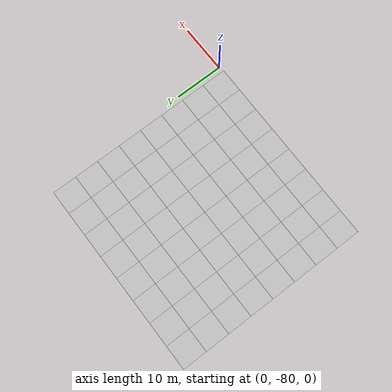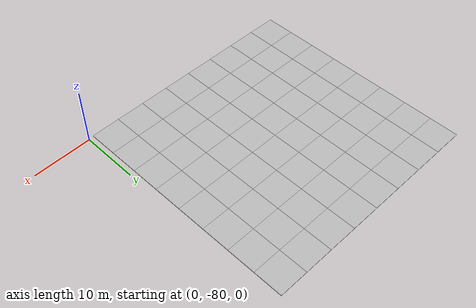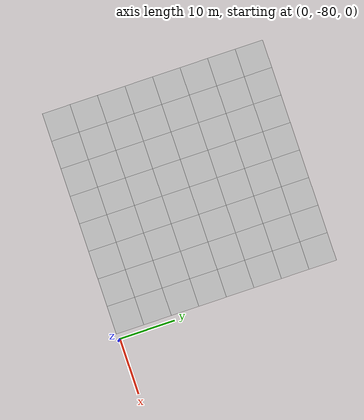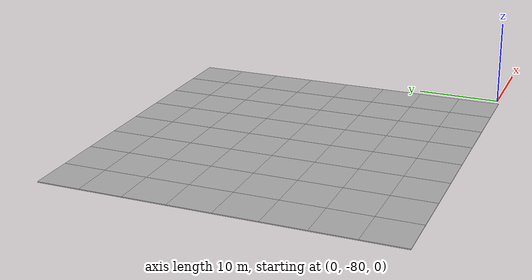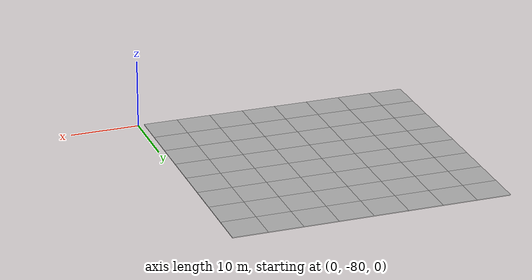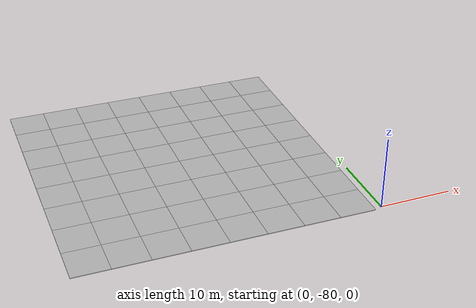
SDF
<sdf version="1.7">
 <world name="default">
  <model name="mud_plane_80x80_2">
   <model name="mud_plane_40x40_0">
    <model name="mud_plane_20x20">
     <model name="mud_plane">
      <static>1</static>
      <link name="link">
       <collision name="collision"><geometry><box><size>10 10 0.1</size></box></geometry></collision>
       <visual name="visual_1">
        <pose>-2.5 2.5 -0.05 0 -0 0</pose>
        <cast_shadows>0</cast_shadows>
        <geometry><box><size>5 5 0.1</size></box></geometry>
        <material>
         <script>
          <uri>model://mud_plane/materials/scripts</uri>
          <uri>model://mud_plane/materials/textures</uri>
          <name>vrc/mud</name>
         </script>
        </material>
       </visual>
       <visual name="visual_2">
        <pose>2.5 2.5 -0.05 0 -0 0</pose>
        <cast_shadows>0</cast_shadows>
        <geometry><box><size>5 5 0.1</size></box></geometry>
        <material>
         <script>
          <uri>model://mud_plane/materials/scripts</uri>
          <uri>model://mud_plane/materials/textures</uri>
          <name>vrc/mud</name>
         </script>
        </material>
       </visual>
       <visual name="visual_3">
        <pose>2.5 -2.5 -0.05 0 -0 0</pose>
        <cast_shadows>0</cast_shadows>
        <geometry><box><size>5 5 0.1</size></box></geometry>
        <material>
         <script>
          <uri>model://mud_plane/materials/scripts</uri>
          <uri>model://mud_plane/materials/textures</uri>
          <name>vrc/mud</name>
         </script>
        </material>
       </visual>
       <visual name="visual_4">
        <pose>-2.5 -2.5 -0.05 0 -0 0</pose>
        <cast_shadows>0</cast_shadows>
        <geometry><box><size>5 5 0.1</size></box></geometry>
        <material>
         <script>
          <uri>model://mud_plane/materials/scripts</uri>
          <uri>model://mud_plane/materials/textures</uri>
          <name>vrc/mud</name>
         </script>
        </material>
       </visual>
      </link>
      <pose>-4.99986 -4.99991 0 0 -0 0</pose>
     </model>
     <model name="mud_plane_0">
      <static>1</static>
      <link name="link">
       <collision name="collision"><geometry><box><size>10 10 0.1</size></box></geometry></collision>
       <visual name="visual_1">
        <pose>-2.5 2.5 -0.05 0 -0 0</pose>
        <cast_shadows>0</cast_shadows>
        <geometry><box><size>5 5 0.1</size></box></geometry>
        <material>
         <script>
          <uri>model://mud_plane/materials/scripts</uri>
          <uri>model://mud_plane/materials/textures</uri>
          <name>vrc/mud</name>
         </script>
        </material>
       </visual>
       <visual name="visual_2">
        <pose>2.5 2.5 -0.05 0 -0 0</pose>
        <cast_shadows>0</cast_shadows>
        <geometry><box><size>5 5 0.1</size></box></geometry>
        <material>
         <script>
          <uri>model://mud_plane/materials/scripts</uri>
          <uri>model://mud_plane/materials/textures</uri>
          <name>vrc/mud</name>
         </script>
        </material>
       </visual>
       <visual name="visual_3">
        <pose>2.5 -2.5 -0.05 0 -0 0</pose>
        <cast_shadows>0</cast_shadows>
        <geometry><box><size>5 5 0.1</size></box></geometry>
        <material>
         <script>
          <uri>model://mud_plane/materials/scripts</uri>
          <uri>model://mud_plane/materials/textures</uri>
          <name>vrc/mud</name>
         </script>
        </material>
       </visual>
       <visual name="visual_4">
        <pose>-2.5 -2.5 -0.05 0 -0 0</pose>
        <cast_shadows>0</cast_shadows>
        <geometry><box><size>5 5 0.1</size></box></geometry>
        <material>
         <script>
          <uri>model://mud_plane/materials/scripts</uri>
          <uri>model://mud_plane/materials/textures</uri>
          <name>vrc/mud</name>
         </script>
        </material>
       </visual>
      </link>
      <pose>-4.99946 4.99954 0 0 -0 0</pose>
     </model>
     <model name="mud_plane_1">
      <static>1</static>
      <link name="link">
       <collision name="collision"><geometry><box><size>10 10 0.1</size></box></geometry></collision>
       <visual name="visual_1">
        <pose>-2.5 2.5 -0.05 0 -0 0</pose>
        <cast_shadows>0</cast_shadows>
        <geometry><box><size>5 5 0.1</size></box></geometry>
        <material>
         <script>
          <uri>model://mud_plane/materials/scripts</uri>
          <uri>model://mud_plane/materials/textures</uri>
          <name>vrc/mud</name>
         </script>
        </material>
       </visual>
       <visual name="visual_2">
        <pose>2.5 2.5 -0.05 0 -0 0</pose>
        <cast_shadows>0</cast_shadows>
        <geometry><box><size>5 5 0.1</size></box></geometry>
        <material>
         <script>
          <uri>model://mud_plane/materials/scripts</uri>
          <uri>model://mud_plane/materials/textures</uri>
          <name>vrc/mud</name>
         </script>
        </material>
       </visual>
       <visual name="visual_3">
        <pose>2.5 -2.5 -0.05 0 -0 0</pose>
        <cast_shadows>0</cast_shadows>
        <geometry><box><size>5 5 0.1</size></box></geometry>
        <material>
         <script>
          <uri>model://mud_plane/materials/scripts</uri>
          <uri>model://mud_plane/materials/textures</uri>
          <name>vrc/mud</name>
         </script>
        </material>
       </visual>
       <visual name="visual_4">
        <pose>-2.5 -2.5 -0.05 0 -0 0</pose>
        <cast_shadows>0</cast_shadows>
        <geometry><box><size>5 5 0.1</size></box></geometry>
        <material>
         <script>
          <uri>model://mud_plane/materials/scripts</uri>
          <uri>model://mud_plane/materials/textures</uri>
          <name>vrc/mud</name>
         </script>
        </material>
       </visual>
      </link>
      <pose>4.99964 -4.99949 0 0 -0 0</pose>
     </model>
     <model name="mud_plane_2">
      <static>1</static>
      <link name="link">
       <collision name="collision"><geometry><box><size>10 10 0.1</size></box></geometry></collision>
       <visual name="visual_1">
        <pose>-2.5 2.5 -0.05 0 -0 0</pose>
        <cast_shadows>0</cast_shadows>
        <geometry><box><size>5 5 0.1</size></box></geometry>
        <material>
         <script>
          <uri>model://mud_plane/materials/scripts</uri>
          <uri>model://mud_plane/materials/textures</uri>
          <name>vrc/mud</name>
         </script>
        </material>
       </visual>
       <visual name="visual_2">
        <pose>2.5 2.5 -0.05 0 -0 0</pose>
        <cast_shadows>0</cast_shadows>
        <geometry><box><size>5 5 0.1</size></box></geometry>
        <material>
         <script>
          <uri>model://mud_plane/materials/scripts</uri>
          <uri>model://mud_plane/materials/textures</uri>
          <name>vrc/mud</name>
         </script>
        </material>
       </visual>
       <visual name="visual_3">
        <pose>2.5 -2.5 -0.05 0 -0 0</pose>
        <cast_shadows>0</cast_shadows>
        <geometry><box><size>5 5 0.1</size></box></geometry>
        <material>
         <script>
          <uri>model://mud_plane/materials/scripts</uri>
          <uri>model://mud_plane/materials/textures</uri>
          <name>vrc/mud</name>
         </script>
        </material>
       </visual>
       <visual name="visual_4">
        <pose>-2.5 -2.5 -0.05 0 -0 0</pose>
        <cast_shadows>0</cast_shadows>
        <geometry><box><size>5 5 0.1</size></box></geometry>
        <material>
         <script>
          <uri>model://mud_plane/materials/scripts</uri>
          <uri>model://mud_plane/materials/textures</uri>
          <name>vrc/mud</name>
         </script>
        </material>
       </visual>
      </link>
      <pose>4.99967 4.99986 0 0 -0 0</pose>
     </model>
     <static>0</static>
     <pose>-9.99895 9.99843 0 0 -0 0</pose>
    </model>
    <model name="mud_plane_20x20_0">
     <model name="mud_plane">
      <static>1</static>
      <link name="link">
       <collision name="collision"><geometry><box><size>10 10 0.1</size></box></geometry></collision>
       <visual name="visual_1">
        <pose>-2.5 2.5 -0.05 0 -0 0</pose>
        <cast_shadows>0</cast_shadows>
        <geometry><box><size>5 5 0.1</size></box></geometry>
        <material>
         <script>
          <uri>model://mud_plane/materials/scripts</uri>
          <uri>model://mud_plane/materials/textures</uri>
          <name>vrc/mud</name>
         </script>
        </material>
       </visual>
       <visual name="visual_2">
        <pose>2.5 2.5 -0.05 0 -0 0</pose>
        <cast_shadows>0</cast_shadows>
        <geometry><box><size>5 5 0.1</size></box></geometry>
        <material>
         <script>
          <uri>model://mud_plane/materials/scripts</uri>
          <uri>model://mud_plane/materials/textures</uri>
          <name>vrc/mud</name>
         </script>
        </material>
       </visual>
       <visual name="visual_3">
        <pose>2.5 -2.5 -0.05 0 -0 0</pose>
        <cast_shadows>0</cast_shadows>
        <geometry><box><size>5 5 0.1</size></box></geometry>
        <material>
         <script>
          <uri>model://mud_plane/materials/scripts</uri>
          <uri>model://mud_plane/materials/textures</uri>
          <name>vrc/mud</name>
         </script>
        </material>
       </visual>
       <visual name="visual_4">
        <pose>-2.5 -2.5 -0.05 0 -0 0</pose>
        <cast_shadows>0</cast_shadows>
        <geometry><box><size>5 5 0.1</size></box></geometry>
        <material>
         <script>
          <uri>model://mud_plane/materials/scripts</uri>
          <uri>model://mud_plane/materials/textures</uri>
          <name>vrc/mud</name>
         </script>
        </material>
       </visual>
      </link>
      <pose>-4.99986 -4.99991 0 0 -0 0</pose>
     </model>
     <model name="mud_plane_0">
      <static>1</static>
      <link name="link">
       <collision name="collision"><geometry><box><size>10 10 0.1</size></box></geometry></collision>
       <visual name="visual_1">
        <pose>-2.5 2.5 -0.05 0 -0 0</pose>
        <cast_shadows>0</cast_shadows>
        <geometry><box><size>5 5 0.1</size></box></geometry>
        <material>
         <script>
          <uri>model://mud_plane/materials/scripts</uri>
          <uri>model://mud_plane/materials/textures</uri>
          <name>vrc/mud</name>
         </script>
        </material>
       </visual>
       <visual name="visual_2">
        <pose>2.5 2.5 -0.05 0 -0 0</pose>
        <cast_shadows>0</cast_shadows>
        <geometry><box><size>5 5 0.1</size></box></geometry>
        <material>
         <script>
          <uri>model://mud_plane/materials/scripts</uri>
          <uri>model://mud_plane/materials/textures</uri>
          <name>vrc/mud</name>
         </script>
        </material>
       </visual>
       <visual name="visual_3">
        <pose>2.5 -2.5 -0.05 0 -0 0</pose>
        <cast_shadows>0</cast_shadows>
        <geometry><box><size>5 5 0.1</size></box></geometry>
        <material>
         <script>
          <uri>model://mud_plane/materials/scripts</uri>
          <uri>model://mud_plane/materials/textures</uri>
          <name>vrc/mud</name>
         </script>
        </material>
       </visual>
       <visual name="visual_4">
        <pose>-2.5 -2.5 -0.05 0 -0 0</pose>
        <cast_shadows>0</cast_shadows>
        <geometry><box><size>5 5 0.1</size></box></geometry>
        <material>
         <script>
          <uri>model://mud_plane/materials/scripts</uri>
          <uri>model://mud_plane/materials/textures</uri>
          <name>vrc/mud</name>
         </script>
        </material>
       </visual>
      </link>
      <pose>-4.99946 4.99954 0 0 -0 0</pose>
     </model>
     <model name="mud_plane_1">
      <static>1</static>
      <link name="link">
       <collision name="collision"><geometry><box><size>10 10 0.1</size></box></geometry></collision>
       <visual name="visual_1">
        <pose>-2.5 2.5 -0.05 0 -0 0</pose>
        <cast_shadows>0</cast_shadows>
        <geometry><box><size>5 5 0.1</size></box></geometry>
        <material>
         <script>
          <uri>model://mud_plane/materials/scripts</uri>
          <uri>model://mud_plane/materials/textures</uri>
          <name>vrc/mud</name>
         </script>
        </material>
       </visual>
       <visual name="visual_2">
        <pose>2.5 2.5 -0.05 0 -0 0</pose>
        <cast_shadows>0</cast_shadows>
        <geometry><box><size>5 5 0.1</size></box></geometry>
        <material>
         <script>
          <uri>model://mud_plane/materials/scripts</uri>
          <uri>model://mud_plane/materials/textures</uri>
          <name>vrc/mud</name>
         </script>
        </material>
       </visual>
       <visual name="visual_3">
        <pose>2.5 -2.5 -0.05 0 -0 0</pose>
        <cast_shadows>0</cast_shadows>
        <geometry><box><size>5 5 0.1</size></box></geometry>
        <material>
         <script>
          <uri>model://mud_plane/materials/scripts</uri>
          <uri>model://mud_plane/materials/textures</uri>
          <name>vrc/mud</name>
         </script>
        </material>
       </visual>
       <visual name="visual_4">
        <pose>-2.5 -2.5 -0.05 0 -0 0</pose>
        <cast_shadows>0</cast_shadows>
        <geometry><box><size>5 5 0.1</size></box></geometry>
        <material>
         <script>
          <uri>model://mud_plane/materials/scripts</uri>
          <uri>model://mud_plane/materials/textures</uri>
          <name>vrc/mud</name>
         </script>
        </material>
       </visual>
      </link>
      <pose>4.99964 -4.99949 0 0 -0 0</pose>
     </model>
     <model name="mud_plane_2">
      <static>1</static>
      <link name="link">
       <collision name="collision"><geometry><box><size>10 10 0.1</size></box></geometry></collision>
       <visual name="visual_1">
        <pose>-2.5 2.5 -0.05 0 -0 0</pose>
        <cast_shadows>0</cast_shadows>
        <geometry><box><size>5 5 0.1</size></box></geometry>
        <material>
         <script>
          <uri>model://mud_plane/materials/scripts</uri>
          <uri>model://mud_plane/materials/textures</uri>
          <name>vrc/mud</name>
         </script>
        </material>
       </visual>
       <visual name="visual_2">
        <pose>2.5 2.5 -0.05 0 -0 0</pose>
        <cast_shadows>0</cast_shadows>
        <geometry><box><size>5 5 0.1</size></box></geometry>
        <material>
         <script>
          <uri>model://mud_plane/materials/scripts</uri>
          <uri>model://mud_plane/materials/textures</uri>
          <name>vrc/mud</name>
         </script>
        </material>
       </visual>
       <visual name="visual_3">
        <pose>2.5 -2.5 -0.05 0 -0 0</pose>
        <cast_shadows>0</cast_shadows>
        <geometry><box><size>5 5 0.1</size></box></geometry>
        <material>
         <script>
          <uri>model://mud_plane/materials/scripts</uri>
          <uri>model://mud_plane/materials/textures</uri>
          <name>vrc/mud</name>
         </script>
        </material>
       </visual>
       <visual name="visual_4">
        <pose>-2.5 -2.5 -0.05 0 -0 0</pose>
        <cast_shadows>0</cast_shadows>
        <geometry><box><size>5 5 0.1</size></box></geometry>
        <material>
         <script>
          <uri>model://mud_plane/materials/scripts</uri>
          <uri>model://mud_plane/materials/textures</uri>
          <name>vrc/mud</name>
         </script>
        </material>
       </visual>
      </link>
      <pose>4.99967 4.99986 0 0 -0 0</pose>
     </model>
     <static>0</static>
     <pose>9.99933 9.9997 0 0 -0 0</pose>
    </model>
    <model name="mud_plane_20x20_1">
     <model name="mud_plane">
      <static>1</static>
      <link name="link">
       <collision name="collision"><geometry><box><size>10 10 0.1</size></box></geometry></collision>
       <visual name="visual_1">
        <pose>-2.5 2.5 -0.05 0 -0 0</pose>
        <cast_shadows>0</cast_shadows>
        <geometry><box><size>5 5 0.1</size></box></geometry>
        <material>
         <script>
          <uri>model://mud_plane/materials/scripts</uri>
          <uri>model://mud_plane/materials/textures</uri>
          <name>vrc/mud</name>
         </script>
        </material>
       </visual>
       <visual name="visual_2">
        <pose>2.5 2.5 -0.05 0 -0 0</pose>
        <cast_shadows>0</cast_shadows>
        <geometry><box><size>5 5 0.1</size></box></geometry>
        <material>
         <script>
          <uri>model://mud_plane/materials/scripts</uri>
          <uri>model://mud_plane/materials/textures</uri>
          <name>vrc/mud</name>
         </script>
        </material>
       </visual>
       <visual name="visual_3">
        <pose>2.5 -2.5 -0.05 0 -0 0</pose>
        <cast_shadows>0</cast_shadows>
        <geometry><box><size>5 5 0.1</size></box></geometry>
        <material>
         <script>
          <uri>model://mud_plane/materials/scripts</uri>
          <uri>model://mud_plane/materials/textures</uri>
          <name>vrc/mud</name>
         </script>
        </material>
       </visual>
       <visual name="visual_4">
        <pose>-2.5 -2.5 -0.05 0 -0 0</pose>
        <cast_shadows>0</cast_shadows>
        <geometry><box><size>5 5 0.1</size></box></geometry>
        <material>
         <script>
          <uri>model://mud_plane/materials/scripts</uri>
          <uri>model://mud_plane/materials/textures</uri>
          <name>vrc/mud</name>
         </script>
        </material>
       </visual>
      </link>
      <pose>-4.99986 -4.99991 0 0 -0 0</pose>
     </model>
     <model name="mud_plane_0">
      <static>1</static>
      <link name="link">
       <collision name="collision"><geometry><box><size>10 10 0.1</size></box></geometry></collision>
       <visual name="visual_1">
        <pose>-2.5 2.5 -0.05 0 -0 0</pose>
        <cast_shadows>0</cast_shadows>
        <geometry><box><size>5 5 0.1</size></box></geometry>
        <material>
         <script>
          <uri>model://mud_plane/materials/scripts</uri>
          <uri>model://mud_plane/materials/textures</uri>
          <name>vrc/mud</name>
         </script>
        </material>
       </visual>
       <visual name="visual_2">
        <pose>2.5 2.5 -0.05 0 -0 0</pose>
        <cast_shadows>0</cast_shadows>
        <geometry><box><size>5 5 0.1</size></box></geometry>
        <material>
         <script>
          <uri>model://mud_plane/materials/scripts</uri>
          <uri>model://mud_plane/materials/textures</uri>
          <name>vrc/mud</name>
         </script>
        </material>
       </visual>
       <visual name="visual_3">
        <pose>2.5 -2.5 -0.05 0 -0 0</pose>
        <cast_shadows>0</cast_shadows>
        <geometry><box><size>5 5 0.1</size></box></geometry>
        <material>
         <script>
          <uri>model://mud_plane/materials/scripts</uri>
          <uri>model://mud_plane/materials/textures</uri>
          <name>vrc/mud</name>
         </script>
        </material>
       </visual>
       <visual name="visual_4">
        <pose>-2.5 -2.5 -0.05 0 -0 0</pose>
        <cast_shadows>0</cast_shadows>
        <geometry><box><size>5 5 0.1</size></box></geometry>
        <material>
         <script>
          <uri>model://mud_plane/materials/scripts</uri>
          <uri>model://mud_plane/materials/textures</uri>
          <name>vrc/mud</name>
         </script>
        </material>
       </visual>
      </link>
      <pose>-4.99946 4.99954 0 0 -0 0</pose>
     </model>
     <model name="mud_plane_1">
      <static>1</static>
      <link name="link">
       <collision name="collision"><geometry><box><size>10 10 0.1</size></box></geometry></collision>
       <visual name="visual_1">
        <pose>-2.5 2.5 -0.05 0 -0 0</pose>
        <cast_shadows>0</cast_shadows>
        <geometry><box><size>5 5 0.1</size></box></geometry>
        <material>
         <script>
          <uri>model://mud_plane/materials/scripts</uri>
          <uri>model://mud_plane/materials/textures</uri>
          <name>vrc/mud</name>
         </script>
        </material>
       </visual>
       <visual name="visual_2">
        <pose>2.5 2.5 -0.05 0 -0 0</pose>
        <cast_shadows>0</cast_shadows>
        <geometry><box><size>5 5 0.1</size></box></geometry>
        <material>
         <script>
          <uri>model://mud_plane/materials/scripts</uri>
          <uri>model://mud_plane/materials/textures</uri>
          <name>vrc/mud</name>
         </script>
        </material>
       </visual>
       <visual name="visual_3">
        <pose>2.5 -2.5 -0.05 0 -0 0</pose>
        <cast_shadows>0</cast_shadows>
        <geometry><box><size>5 5 0.1</size></box></geometry>
        <material>
         <script>
          <uri>model://mud_plane/materials/scripts</uri>
          <uri>model://mud_plane/materials/textures</uri>
          <name>vrc/mud</name>
         </script>
        </material>
       </visual>
       <visual name="visual_4">
        <pose>-2.5 -2.5 -0.05 0 -0 0</pose>
        <cast_shadows>0</cast_shadows>
        <geometry><box><size>5 5 0.1</size></box></geometry>
        <material>
         <script>
          <uri>model://mud_plane/materials/scripts</uri>
          <uri>model://mud_plane/materials/textures</uri>
          <name>vrc/mud</name>
         </script>
        </material>
       </visual>
      </link>
      <pose>4.99964 -4.99949 0 0 -0 0</pose>
     </model>
     <model name="mud_plane_2">
      <static>1</static>
      <link name="link">
       <collision name="collision"><geometry><box><size>10 10 0.1</size></box></geometry></collision>
       <visual name="visual_1">
        <pose>-2.5 2.5 -0.05 0 -0 0</pose>
        <cast_shadows>0</cast_shadows>
        <geometry><box><size>5 5 0.1</size></box></geometry>
        <material>
         <script>
          <uri>model://mud_plane/materials/scripts</uri>
          <uri>model://mud_plane/materials/textures</uri>
          <name>vrc/mud</name>
         </script>
        </material>
       </visual>
       <visual name="visual_2">
        <pose>2.5 2.5 -0.05 0 -0 0</pose>
        <cast_shadows>0</cast_shadows>
        <geometry><box><size>5 5 0.1</size></box></geometry>
        <material>
         <script>
          <uri>model://mud_plane/materials/scripts</uri>
          <uri>model://mud_plane/materials/textures</uri>
          <name>vrc/mud</name>
         </script>
        </material>
       </visual>
       <visual name="visual_3">
        <pose>2.5 -2.5 -0.05 0 -0 0</pose>
        <cast_shadows>0</cast_shadows>
        <geometry><box><size>5 5 0.1</size></box></geometry>
        <material>
         <script>
          <uri>model://mud_plane/materials/scripts</uri>
          <uri>model://mud_plane/materials/textures</uri>
          <name>vrc/mud</name>
         </script>
        </material>
       </visual>
       <visual name="visual_4">
        <pose>-2.5 -2.5 -0.05 0 -0 0</pose>
        <cast_shadows>0</cast_shadows>
        <geometry><box><size>5 5 0.1</size></box></geometry>
        <material>
         <script>
          <uri>model://mud_plane/materials/scripts</uri>
          <uri>model://mud_plane/materials/textures</uri>
          <name>vrc/mud</name>
         </script>
        </material>
       </visual>
      </link>
      <pose>4.99967 4.99986 0 0 -0 0</pose>
     </model>
     <static>0</static>
     <pose>9.9993 -9.99877 0 0 -0 0</pose>
    </model>
    <model name="mud_plane_20x20_2">
     <model name="mud_plane">
      <static>1</static>
      <link name="link">
       <collision name="collision"><geometry><box><size>10 10 0.1</size></box></geometry></collision>
       <visual name="visual_1">
        <pose>-2.5 2.5 -0.05 0 -0 0</pose>
        <cast_shadows>0</cast_shadows>
        <geometry><box><size>5 5 0.1</size></box></geometry>
        <material>
         <script>
          <uri>model://mud_plane/materials/scripts</uri>
          <uri>model://mud_plane/materials/textures</uri>
          <name>vrc/mud</name>
         </script>
        </material>
       </visual>
       <visual name="visual_2">
        <pose>2.5 2.5 -0.05 0 -0 0</pose>
        <cast_shadows>0</cast_shadows>
        <geometry><box><size>5 5 0.1</size></box></geometry>
        <material>
         <script>
          <uri>model://mud_plane/materials/scripts</uri>
          <uri>model://mud_plane/materials/textures</uri>
          <name>vrc/mud</name>
         </script>
        </material>
       </visual>
       <visual name="visual_3">
        <pose>2.5 -2.5 -0.05 0 -0 0</pose>
        <cast_shadows>0</cast_shadows>
        <geometry><box><size>5 5 0.1</size></box></geometry>
        <material>
         <script>
          <uri>model://mud_plane/materials/scripts</uri>
          <uri>model://mud_plane/materials/textures</uri>
          <name>vrc/mud</name>
         </script>
        </material>
       </visual>
       <visual name="visual_4">
        <pose>-2.5 -2.5 -0.05 0 -0 0</pose>
        <cast_shadows>0</cast_shadows>
        <geometry><box><size>5 5 0.1</size></box></geometry>
        <material>
         <script>
          <uri>model://mud_plane/materials/scripts</uri>
          <uri>model://mud_plane/materials/textures</uri>
          <name>vrc/mud</name>
         </script>
        </material>
       </visual>
      </link>
      <pose>-4.99986 -4.99991 0 0 -0 0</pose>
     </model>
     <model name="mud_plane_0">
      <static>1</static>
      <link name="link">
       <collision name="collision"><geometry><box><size>10 10 0.1</size></box></geometry></collision>
       <visual name="visual_1">
        <pose>-2.5 2.5 -0.05 0 -0 0</pose>
        <cast_shadows>0</cast_shadows>
        <geometry><box><size>5 5 0.1</size></box></geometry>
        <material>
         <script>
          <uri>model://mud_plane/materials/scripts</uri>
          <uri>model://mud_plane/materials/textures</uri>
          <name>vrc/mud</name>
         </script>
        </material>
       </visual>
       <visual name="visual_2">
        <pose>2.5 2.5 -0.05 0 -0 0</pose>
        <cast_shadows>0</cast_shadows>
        <geometry><box><size>5 5 0.1</size></box></geometry>
        <material>
         <script>
          <uri>model://mud_plane/materials/scripts</uri>
          <uri>model://mud_plane/materials/textures</uri>
          <name>vrc/mud</name>
         </script>
        </material>
       </visual>
       <visual name="visual_3">
        <pose>2.5 -2.5 -0.05 0 -0 0</pose>
        <cast_shadows>0</cast_shadows>
        <geometry><box><size>5 5 0.1</size></box></geometry>
        <material>
         <script>
          <uri>model://mud_plane/materials/scripts</uri>
          <uri>model://mud_plane/materials/textures</uri>
          <name>vrc/mud</name>
         </script>
        </material>
       </visual>
       <visual name="visual_4">
        <pose>-2.5 -2.5 -0.05 0 -0 0</pose>
        <cast_shadows>0</cast_shadows>
        <geometry><box><size>5 5 0.1</size></box></geometry>
        <material>
         <script>
          <uri>model://mud_plane/materials/scripts</uri>
          <uri>model://mud_plane/materials/textures</uri>
          <name>vrc/mud</name>
         </script>
        </material>
       </visual>
      </link>
      <pose>-4.99946 4.99954 0 0 -0 0</pose>
     </model>
     <model name="mud_plane_1">
      <static>1</static>
      <link name="link">
       <collision name="collision"><geometry><box><size>10 10 0.1</size></box></geometry></collision>
       <visual name="visual_1">
        <pose>-2.5 2.5 -0.05 0 -0 0</pose>
        <cast_shadows>0</cast_shadows>
        <geometry><box><size>5 5 0.1</size></box></geometry>
        <material>
         <script>
          <uri>model://mud_plane/materials/scripts</uri>
          <uri>model://mud_plane/materials/textures</uri>
          <name>vrc/mud</name>
         </script>
        </material>
       </visual>
       <visual name="visual_2">
        <pose>2.5 2.5 -0.05 0 -0 0</pose>
        <cast_shadows>0</cast_shadows>
        <geometry><box><size>5 5 0.1</size></box></geometry>
        <material>
         <script>
          <uri>model://mud_plane/materials/scripts</uri>
          <uri>model://mud_plane/materials/textures</uri>
          <name>vrc/mud</name>
         </script>
        </material>
       </visual>
       <visual name="visual_3">
        <pose>2.5 -2.5 -0.05 0 -0 0</pose>
        <cast_shadows>0</cast_shadows>
        <geometry><box><size>5 5 0.1</size></box></geometry>
        <material>
         <script>
          <uri>model://mud_plane/materials/scripts</uri>
          <uri>model://mud_plane/materials/textures</uri>
          <name>vrc/mud</name>
         </script>
        </material>
       </visual>
       <visual name="visual_4">
        <pose>-2.5 -2.5 -0.05 0 -0 0</pose>
        <cast_shadows>0</cast_shadows>
        <geometry><box><size>5 5 0.1</size></box></geometry>
        <material>
         <script>
          <uri>model://mud_plane/materials/scripts</uri>
          <uri>model://mud_plane/materials/textures</uri>
          <name>vrc/mud</name>
         </script>
        </material>
       </visual>
      </link>
      <pose>4.99964 -4.99949 0 0 -0 0</pose>
     </model>
     <model name="mud_plane_2">
      <static>1</static>
      <link name="link">
       <collision name="collision"><geometry><box><size>10 10 0.1</size></box></geometry></collision>
       <visual name="visual_1">
        <pose>-2.5 2.5 -0.05 0 -0 0</pose>
        <cast_shadows>0</cast_shadows>
        <geometry><box><size>5 5 0.1</size></box></geometry>
        <material>
         <script>
          <uri>model://mud_plane/materials/scripts</uri>
          <uri>model://mud_plane/materials/textures</uri>
          <name>vrc/mud</name>
         </script>
        </material>
       </visual>
       <visual name="visual_2">
        <pose>2.5 2.5 -0.05 0 -0 0</pose>
        <cast_shadows>0</cast_shadows>
        <geometry><box><size>5 5 0.1</size></box></geometry>
        <material>
         <script>
          <uri>model://mud_plane/materials/scripts</uri>
          <uri>model://mud_plane/materials/textures</uri>
          <name>vrc/mud</name>
         </script>
        </material>
       </visual>
       <visual name="visual_3">
        <pose>2.5 -2.5 -0.05 0 -0 0</pose>
        <cast_shadows>0</cast_shadows>
        <geometry><box><size>5 5 0.1</size></box></geometry>
        <material>
         <script>
          <uri>model://mud_plane/materials/scripts</uri>
          <uri>model://mud_plane/materials/textures</uri>
          <name>vrc/mud</name>
         </script>
        </material>
       </visual>
       <visual name="visual_4">
        <pose>-2.5 -2.5 -0.05 0 -0 0</pose>
        <cast_shadows>0</cast_shadows>
        <geometry><box><size>5 5 0.1</size></box></geometry>
        <material>
         <script>
          <uri>model://mud_plane/materials/scripts</uri>
          <uri>model://mud_plane/materials/textures</uri>
          <name>vrc/mud</name>
         </script>
        </material>
       </visual>
      </link>
      <pose>4.99967 4.99986 0 0 -0 0</pose>
     </model>
     <static>0</static>
     <pose>-9.99969 -9.99935 0 0 -0 0</pose>
    </model>
    <static>0</static>
    <pose>19.9985 -19.998 0 0 -0 0</pose>
   </model>
   <static>0</static>
   <pose>-40.9522 -40.3255 0 0 -0 0</pose>
  </model>
 </world>
</sdf>
